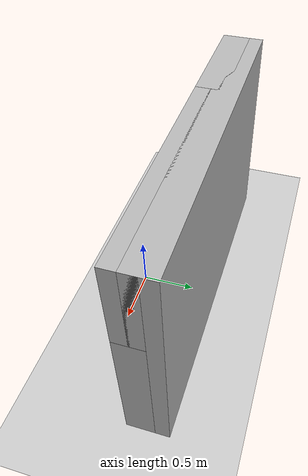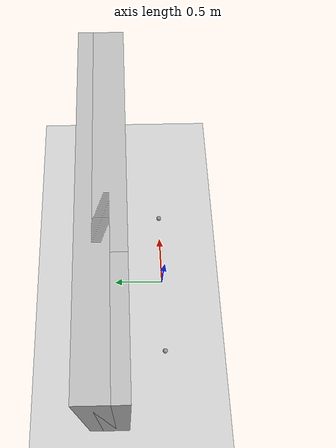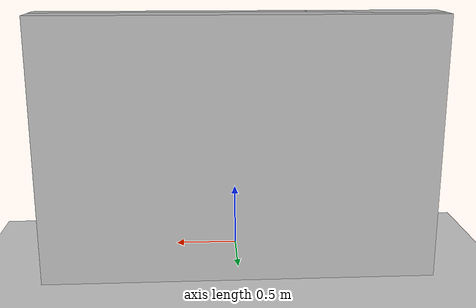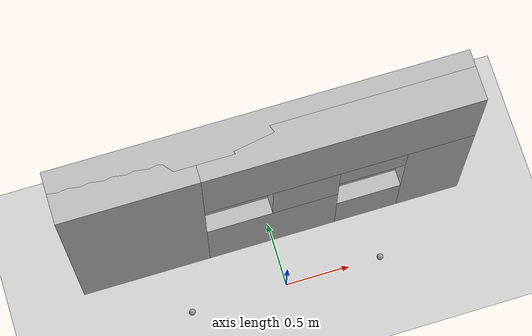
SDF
<?xml version="1.0" ?>
<sdf version="1.4">

  <world name="default">
    <include>
      <uri>model://ground_plane</uri>
    </include>

    <!-- Global light source -->
    <include>
      <uri>model://sun</uri>
    </include>

    <!-- Focus camera on tall pendulum -->
    <gui fullscreen='0'>
      <camera name='user_camera'>
        <pose>4.927360 -4.376610 3.740080 0.000000 0.275643 2.356190</pose>
        <view_controller>orbit</view_controller>
      </camera>
    </gui>

    <model name="brick_box_1">
        <static>1</static>
        <link name="chassis">

        <pose frame="">0 0.625 1 0 0 0</pose>
        <collision name="collision">
        <geometry>
          <box>
            <size>3 0.25 2</size>
          </box>
        </geometry>
        <max_contacts>10</max_contacts>
        <surface>
          <bounce />
          <friction>
            <ode />
          </friction>
          <contact>
            <ode />
          </contact>
        </surface>
        </collision>
        <visual name="visual">
          <geometry>
            <mesh>
              <uri>model://brick_box_3x1x3/meshes/simple_box.dae</uri>
              <scale> 3 0.25 2</scale>
            </mesh>
          </geometry>
          <material>
            <script>
              <uri>model://brick_box_3x1x3/materials/scripts</uri>
              <uri>model:??brick_box_3x1x3/materials/textures</uri>
              <name>BrickBox/Diffuse</name>
            </script>
          </material>
        </visual>
        <velocity_decay>
          <linear>0</linear>
          <angular>0</angular>
        </velocity_decay>
        <self_collide>0</self_collide>
        <kinematic>0</kinematic>
        <gravity>1</gravity>
        </link>
    </model>

    <model name="brick_box_2">
        <static>1</static>
        <link name="chassis">

        <pose frame="">-1 0.5 1 0 0 0</pose>
        <collision name="collision">
        <geometry>
          <box>
            <size>1 0.25 2</size>
          </box>
        </geometry>
        <max_contacts>10</max_contacts>
        <surface>
          <bounce />
          <friction>
            <ode />
          </friction>
          <contact>
            <ode />
          </contact>
        </surface>
        </collision>
        <visual name="visual">
          <geometry>
            <mesh>
              <uri>model://brick_box_3x1x3/meshes/simple_box.dae</uri>
              <scale>1 0.25 2</scale>
            </mesh>
          </geometry>
          <material>
            <script>
              <uri>model://brick_box_3x1x3/materials/scripts</uri>
              <uri>model:??brick_box_3x1x3/materials/textures</uri>
              <name>BrickBox/Diffuse</name>
            </script>
          </material>
        </visual>
        <velocity_decay>
          <linear>0</linear>
          <angular>0</angular>
        </velocity_decay>
        <self_collide>0</self_collide>
        <kinematic>0</kinematic>
        <gravity>1</gravity>
        </link>
    </model>

    <model name="brick_box_3">
        <static>1</static>
        <link name="chassis">

        <pose frame="">0 0.5 0.375 0 0 0</pose>
        <collision name="collision">
        <geometry>
          <box>
            <size>1 0.25 0.75</size>
          </box>
        </geometry>
        <max_contacts>10</max_contacts>
        <surface>
          <bounce />
          <friction>
            <ode />
          </friction>
          <contact>
            <ode />
          </contact>
        </surface>
        </collision>
        <visual name="visual">
          <geometry>
            <mesh>
              <uri>model://brick_box_3x1x3/meshes/simple_box.dae</uri>
              <scale>1 0.25 0.75</scale>
            </mesh>
          </geometry>
          <material>
            <script>
              <uri>model://brick_box_3x1x3/materials/scripts</uri>
              <uri>model:??brick_box_3x1x3/materials/textures</uri>
              <name>BrickBox/Diffuse</name>
            </script>
          </material>
        </visual>
        <velocity_decay>
          <linear>0</linear>
          <angular>0</angular>
        </velocity_decay>
        <self_collide>0</self_collide>
        <kinematic>0</kinematic>
        <gravity>1</gravity>
        </link>
    </model>

    <model name="brick_box_4">
        <static>1</static>
        <link name="chassis">

        <pose frame="">0.5 0.5 1.625 0 0 0</pose>
        <collision name="collision">
        <geometry>
          <box>
            <size>2 0.25 0.75</size>
          </box>
        </geometry>
        <max_contacts>10</max_contacts>
        <surface>
          <bounce />
          <friction>
            <ode />
          </friction>
          <contact>
            <ode />
          </contact>
        </surface>
        </collision>
        <visual name="visual">
          <geometry>
            <mesh>
              <uri>model://brick_box_3x1x3/meshes/simple_box.dae</uri>
              <scale>2 0.25 0.75</scale>
            </mesh>
          </geometry>
          <material>
            <script>
              <uri>model://brick_box_3x1x3/materials/scripts</uri>
              <uri>model:??brick_box_3x1x3/materials/textures</uri>
              <name>BrickBox/Diffuse</name>
            </script>
          </material>
        </visual>
        <velocity_decay>
          <linear>0</linear>
          <angular>0</angular>
        </velocity_decay>
        <self_collide>0</self_collide>
        <kinematic>0</kinematic>
        <gravity>1</gravity>
        </link>
    </model>

    <model name="brick_box_5">
        <static>1</static>
        <link name="chassis">

        <pose frame="">0.75 0.5 0.25 0 0 0</pose>
        <collision name="collision">
        <geometry>
          <box>
            <size>0.5 0.25 0.5</size>
          </box>
        </geometry>
        <max_contacts>10</max_contacts>
        <surface>
          <bounce />
          <friction>
            <ode />
          </friction>
          <contact>
            <ode />
          </contact>
        </surface>
        </collision>
        <visual name="visual">
          <geometry>
            <mesh>
              <uri>model://brick_box_3x1x3/meshes/simple_box.dae</uri>
              <scale>0.5 0.25 0.5</scale>
            </mesh>
          </geometry>
          <material>
            <script>
              <uri>model://brick_box_3x1x3/materials/scripts</uri>
              <uri>model:??brick_box_3x1x3/materials/textures</uri>
              <name>BrickBox/Diffuse</name>
            </script>
          </material>
        </visual>
        <velocity_decay>
          <linear>0</linear>
          <angular>0</angular>
        </velocity_decay>
        <self_collide>0</self_collide>
        <kinematic>0</kinematic>
        <gravity>1</gravity>
        </link>
    </model>

    <model name="brick_box_6">
        <static>1</static>
        <link name="chassis">

        <pose frame="">1.25 0.5 0.625 0 0 0</pose>
        <collision name="collision">
        <geometry>
          <box>
            <size>0.5 0.25 1.25</size>
          </box>
        </geometry>
        <max_contacts>10</max_contacts>
        <surface>
          <bounce />
          <friction>
            <ode />
          </friction>
          <contact>
            <ode />
          </contact>
        </surface>
        </collision>
        <visual name="visual">
          <geometry>
            <mesh>
              <uri>model://brick_box_3x1x3/meshes/simple_box.dae</uri>
              <scale>0.5 0.25 1.25</scale>
            </mesh>
          </geometry>
          <material>
            <script>
              <uri>model://brick_box_3x1x3/materials/scripts</uri>
              <uri>model:??brick_box_3x1x3/materials/textures</uri>
              <name>BrickBox/Diffuse</name>
            </script>
          </material>
        </visual>
        <velocity_decay>
          <linear>0</linear>
          <angular>0</angular>
        </velocity_decay>
        <self_collide>0</self_collide>
        <kinematic>0</kinematic>
        <gravity>1</gravity>
        </link>
    </model>

    <model name="brick_box_7">
        <static>1</static>
        <link name="chassis">

        <pose frame="">0.25 0.5 1 0 0 0</pose>
        <collision name="collision">
        <geometry>
          <box>
            <size>0.5 0.25 0.5</size>
          </box>
        </geometry>
        <max_contacts>10</max_contacts>
        <surface>
          <bounce />
          <friction>
            <ode />
          </friction>
          <contact>
            <ode />
          </contact>
        </surface>
        </collision>
        <visual name="visual">
          <geometry>
            <mesh>
              <uri>model://brick_box_3x1x3/meshes/simple_box.dae</uri>
              <scale>0.5 0.25 0.5</scale>
            </mesh>
          </geometry>
          <material>
            <script>
              <uri>model://brick_box_3x1x3/materials/scripts</uri>
              <uri>model:??brick_box_3x1x3/materials/textures</uri>
              <name>BrickBox/Diffuse</name>
            </script>
          </material>
        </visual>
        <velocity_decay>
          <linear>0</linear>
          <angular>0</angular>
        </velocity_decay>
        <self_collide>0</self_collide>
        <kinematic>0</kinematic>
        <gravity>1</gravity>
        </link>
    </model>

    <model name="brick_box_8">
        <static>1</static>
        <link name="chassis">

        <pose frame="">0.75 0.5 1.125 0 0 0</pose>
        <collision name="collision">
        <geometry>
          <box>
            <size>0.5 0.25 0.25</size>
          </box>
        </geometry>
        <max_contacts>10</max_contacts>
        <surface>
          <bounce />
          <friction>
            <ode />
          </friction>
          <contact>
            <ode />
          </contact>
        </surface>
        </collision>
        <visual name="visual">
          <geometry>
            <mesh>
              <uri>model://brick_box_3x1x3/meshes/simple_box.dae</uri>
              <scale>0.5 0.25 0.25</scale>
            </mesh>
          </geometry>
          <material>
            <script>
              <uri>model://brick_box_3x1x3/materials/scripts</uri>
              <uri>model:??brick_box_3x1x3/materials/textures</uri>
              <name>BrickBox/Diffuse</name>
            </script>
          </material>
        </visual>
        <velocity_decay>
          <linear>0</linear>
          <angular>0</angular>
        </velocity_decay>
        <self_collide>0</self_collide>
        <kinematic>0</kinematic>
        <gravity>1</gravity>
        </link>
    </model>

    <model name='unit_sphere1'>
      <pose frame=''>0.75 0 0.025 0 0 0</pose>
      <link name='link'>
        <inertial>
          <mass>0.02</mass>
          <inertia>
            <ixx>0</ixx>
            <ixy>0</ixy>
            <ixz>0</ixz>
            <iyy>0</iyy>
            <iyz>0</iyz>
            <izz>0</izz>
          </inertia>
        </inertial>
        <collision name='collision'>
          <geometry>
            <sphere>
              <radius>0.025</radius>
            </sphere>
          </geometry>
          <max_contacts>10</max_contacts>
          <surface>
            <contact>
              <ode/>
            </contact>
            <bounce/>
            <friction>
              <torsional>
                <ode/>
              </torsional>
              <ode/>
            </friction>
          </surface>
        </collision>
        <visual name='visual'>
          <geometry>
            <sphere>
              <radius>0.025</radius>
            </sphere>
          </geometry>
          <material>
            <script>
              <name>Gazebo/Grey</name>
              <uri>file://media/materials/scripts/gazebo.material</uri>
            </script>
          </material>
        </visual>
        <self_collide>0</self_collide>
        <enable_wind>0</enable_wind>
        <kinematic>0</kinematic>
      </link>
    </model>

    <model name='unit_sphere2'>
      <pose frame=''>-0.75 0 0.025 0 0 0</pose>
      <link name='link'>
        <inertial>
          <mass>0.02</mass>
          <inertia>
            <ixx>0</ixx>
            <ixy>0</ixy>
            <ixz>0</ixz>
            <iyy>0</iyy>
            <iyz>0</iyz>
            <izz>0</izz>
          </inertia>
        </inertial>
        <collision name='collision'>
          <geometry>
            <sphere>
              <radius>0.025</radius>
            </sphere>
          </geometry>
          <max_contacts>10</max_contacts>
          <surface>
            <contact>
              <ode/>
            </contact>
            <bounce/>
            <friction>
              <torsional>
                <ode/>
              </torsional>
              <ode/>
            </friction>
          </surface>
        </collision>
        <visual name='visual'>
          <geometry>
            <sphere>
              <radius>0.025</radius>
            </sphere>
          </geometry>
          <material>
            <script>
              <name>Gazebo/Grey</name>
              <uri>file://media/materials/scripts/gazebo.material</uri>
            </script>
          </material>
        </visual>
        <self_collide>0</self_collide>
        <enable_wind>0</enable_wind>
        <kinematic>0</kinematic>
      </link>
    </model>

  </world>
</sdf>
